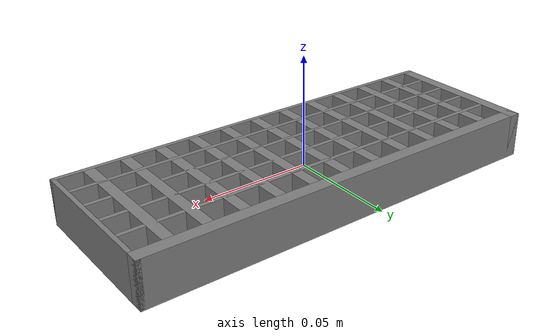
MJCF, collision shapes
<mujoco model="centrifuge_plate_60well">
  <compiler angle="radian" meshdir="../../assets/"/>

  <asset>
    <mesh name="centrifuge_plate_60well-visual_visual" file="rack/centrifuge_plate_60well_vis/visual.obj" scale="0.001 0.001 0.001"/>

    <material name="centrifuge_plate_60well-plastic" rgba="0 0 0.8 1"/>
  </asset>

  <worldbody>
    <body name="centrifuge_plate_60well">
      <geom size="0.0985 0.001 0.0105" pos="0 -0.035 0" type="box" group="3"/>
      <geom size="0.0985 0.003 0.0105" pos="0 0.033 0" type="box" group="3"/>
      <geom size="0.0028 0.036 0.0105" pos="-0.0957 0 0" type="box" group="3"/>
      <geom size="0.001 0.036 0.0105" pos="0.0975 0 0" type="box" group="3"/>
      <geom type="mesh" contype="0" conaffinity="0" group="2" mesh="centrifuge_plate_60well-visual_visual" material="centrifuge_plate_60well-plastic"/>
      <site name="centrifuge_plate-0" pos="-0.0873 0.0244 -0.0105" quat="1 0 0 -1" size="0.005" rgba="1 0 0 1" group="3" user="2 5 0.0132 12 0.0162 0.021"/>
      <frame>
        <geom size="0.0025 0.032 0.0105" pos="-0.0792 -0.002 0" type="box" group="3"/>
      </frame>
      <frame>
        <geom size="0.0025 0.032 0.0105" pos="-0.063 -0.002 0" type="box" group="3"/>
      </frame>
      <frame>
        <geom size="0.0025 0.032 0.0105" pos="-0.0468 -0.002 0" type="box" group="3"/>
      </frame>
      <frame>
        <geom size="0.0025 0.032 0.0105" pos="-0.0306 -0.002 0" type="box" group="3"/>
      </frame>
      <frame>
        <geom size="0.0025 0.032 0.0105" pos="-0.0144 -0.002 0" type="box" group="3"/>
      </frame>
      <frame>
        <geom size="0.0025 0.032 0.0105" pos="0.0018 -0.002 0" type="box" group="3"/>
      </frame>
      <frame>
        <geom size="0.0025 0.032 0.0105" pos="0.018 -0.002 0" type="box" group="3"/>
      </frame>
      <frame>
        <geom size="0.0025 0.032 0.0105" pos="0.0342 -0.002 0" type="box" group="3"/>
      </frame>
      <frame>
        <geom size="0.0025 0.032 0.0105" pos="0.0504 -0.002 0" type="box" group="3"/>
      </frame>
      <frame>
        <geom size="0.0025 0.032 0.0105" pos="0.0666 -0.002 0" type="box" group="3"/>
      </frame>
      <frame>
        <geom size="0.0025 0.032 0.0105" pos="0.0828 -0.002 0" type="box" group="3"/>
      </frame>
      <frame>
        <geom size="0.0947 0.001 0.0105" pos="0.0018 -0.0218 0" type="box" group="3"/>
      </frame>
      <frame>
        <geom size="0.0947 0.001 0.0105" pos="0.0018 -0.0086 0" type="box" group="3"/>
      </frame>
      <frame>
        <geom size="0.0947 0.001 0.0105" pos="0.0018 0.0046 0" type="box" group="3"/>
      </frame>
      <frame>
        <geom size="0.0947 0.001 0.0105" pos="0.0018 0.0178 0" type="box" group="3"/>
      </frame>
    </body>
  </worldbody>
</mujoco>
